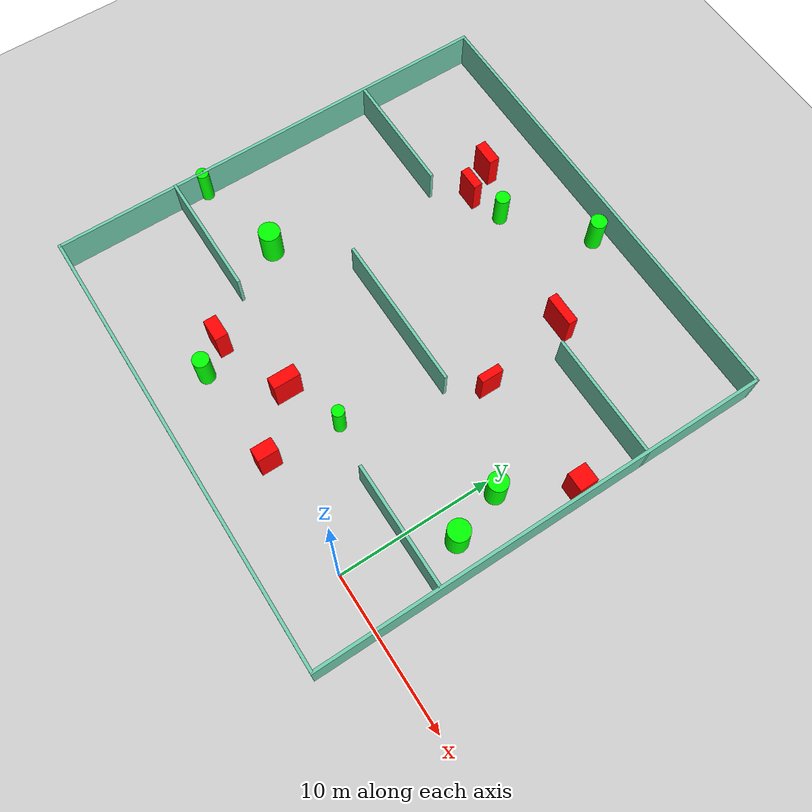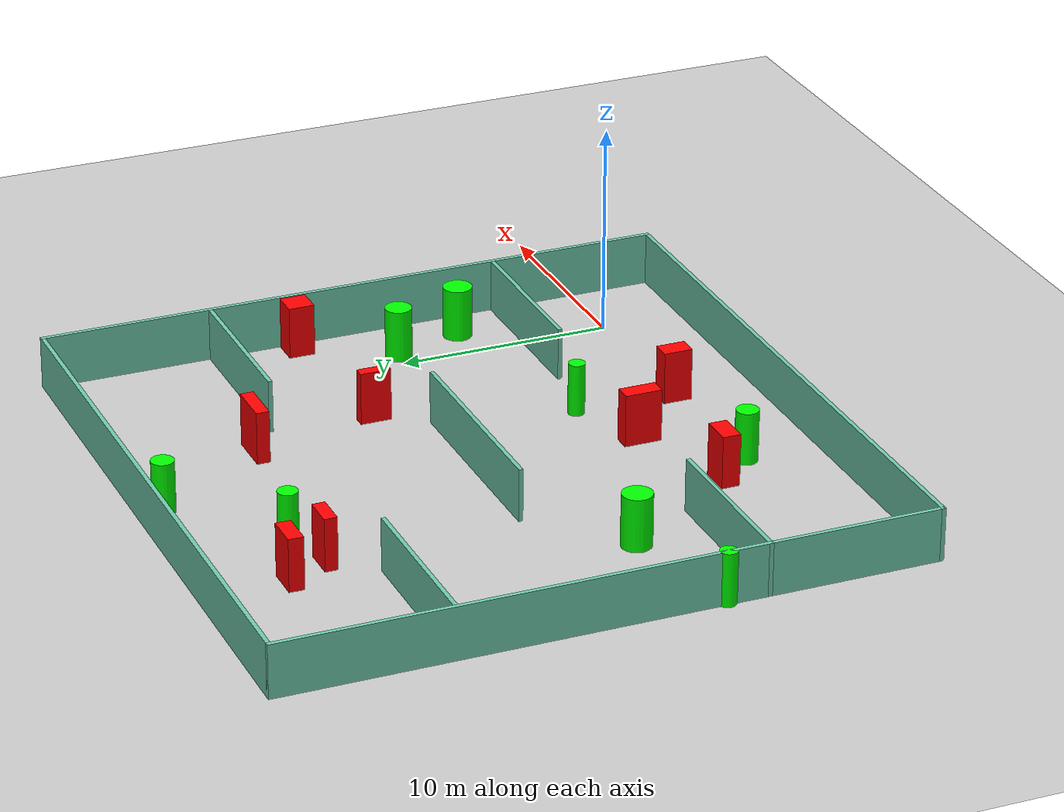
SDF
<sdf version="1.7">
 <world name="default">
  <light name="sun" type="directional">
   <pose>0 0 10 0 -0 0</pose>
   <diffuse>0.8 0.8 0.8 1</diffuse>
   <specular>0.2 0.2 0.2 1</specular>
   <attenuation>
    <range>1000</range>
    <constant>0.9</constant>
    <linear>0.01</linear>
    <quadratic>0.001</quadratic>
   </attenuation>
   <direction>-0.5 0.1 -0.9</direction>
   <spot><inner_angle>0</inner_angle><outer_angle>0</outer_angle><falloff>0</falloff></spot>
  </light>
  <model name="ground_plane">
   <static>1</static>
   <link name="link">
    <collision name="collision">
     <geometry><plane><normal>0 0 1</normal><size>100 100</size></plane></geometry>
     <surface>
      <contact><collide_bitmask>65535</collide_bitmask></contact>
      <friction><ode><mu>100</mu><mu2>50</mu2></ode></friction>
     </surface>
    </collision>
    <visual name="visual">
     <cast_shadows>0</cast_shadows>
     <geometry><plane><normal>0 0 1</normal><size>100 100</size></plane></geometry>
     <material>
      <script><uri>file://media/materials/scripts/gazebo.material</uri><name>Gazebo/Grey</name></script>
     </material>
    </visual>
   </link>
  </model>
  <gravity>0 0 -9.8</gravity>
  <magnetic_field>6e-06 2.3e-05 -4.2e-05</magnetic_field>
  <atmosphere type="adiabatic"/>
  <physics type="ode">
   <max_step_size>0.001</max_step_size>
   <real_time_factor>1</real_time_factor>
   <real_time_update_rate>1000</real_time_update_rate>
  </physics>
  <scene><ambient>0.4 0.4 0.4 1</ambient><background>0.7 0.7 0.7 1</background><shadows>1</shadows></scene>
  <spherical_coordinates>
   <surface_model>EARTH_WGS84</surface_model>
   <latitude_deg>0</latitude_deg>
   <longitude_deg>0</longitude_deg>
   <elevation>0</elevation>
   <heading_deg>0</heading_deg>
  </spherical_coordinates>
  <model name="my_base_walls">
   <link name="Wall_10">
    <collision name="Wall_10_Collision">
     <geometry><box><size>8.2 0.2 2.5</size></box></geometry>
     <pose>0 0 1.25 0 -0 0</pose>
    </collision>
    <visual name="Wall_10_Visual">
     <pose>0 0 1.25 0 -0 0</pose>
     <geometry><box><size>8.2 0.2 2.5</size></box></geometry>
     <material>
      <script><uri>file://media/materials/scripts/gazebo.material</uri><name>Gazebo/Grey</name></script>
      <ambient>0.435294 0.796078 0.67451 1</ambient>
     </material>
     <meta><layer>0</layer></meta>
    </visual>
    <pose>-11 -7 0 0 -0 0</pose>
   </link>
   <link name="Wall_12">
    <collision name="Wall_12_Collision">
     <geometry><box><size>8.2 0.2 2.5</size></box></geometry>
     <pose>0 0 1.25 0 -0 0</pose>
    </collision>
    <visual name="Wall_12_Visual">
     <pose>0 0 1.25 0 -0 0</pose>
     <geometry><box><size>8.2 0.2 2.5</size></box></geometry>
     <material>
      <script><uri>file://media/materials/scripts/gazebo.material</uri><name>Gazebo/Grey</name></script>
      <ambient>0.435294 0.796078 0.67451 1</ambient>
     </material>
     <meta><layer>0</layer></meta>
    </visual>
    <pose>-11 7 0 0 -0 0</pose>
   </link>
   <link name="Wall_14">
    <collision name="Wall_14_Collision">
     <geometry><box><size>8.2 0.2 2.5</size></box></geometry>
     <pose>0 0 1.25 0 -0 0</pose>
    </collision>
    <visual name="Wall_14_Visual">
     <pose>0 0 1.25 0 -0 0</pose>
     <geometry><box><size>8.2 0.2 2.5</size></box></geometry>
     <material>
      <script><uri>file://media/materials/scripts/gazebo.material</uri><name>Gazebo/Grey</name></script>
      <ambient>0.435294 0.796078 0.67451 1</ambient>
     </material>
     <meta><layer>0</layer></meta>
    </visual>
    <pose>11 7 0 0 -0 3.14159</pose>
   </link>
   <link name="Wall_16">
    <collision name="Wall_16_Collision">
     <geometry><box><size>10.2 0.2 2.5</size></box></geometry>
     <pose>0 0 1.25 0 -0 0</pose>
    </collision>
    <visual name="Wall_16_Visual">
     <pose>0 0 1.25 0 -0 0</pose>
     <geometry><box><size>10.2 0.2 2.5</size></box></geometry>
     <material>
      <script><uri>file://media/materials/scripts/gazebo.material</uri><name>Gazebo/Grey</name></script>
      <ambient>0.435294 0.796078 0.67451 1</ambient>
     </material>
     <meta><layer>0</layer></meta>
    </visual>
    <pose>0 0 0 0 -0 3.14159</pose>
   </link>
   <link name="Wall_2">
    <collision name="Wall_2_Collision">
     <geometry><box><size>30.2 0.2 2.5</size></box></geometry>
     <pose>0 0 1.25 0 -0 0</pose>
    </collision>
    <visual name="Wall_2_Visual">
     <pose>0 0 1.25 0 -0 0</pose>
     <geometry><box><size>30.2 0.2 2.5</size></box></geometry>
     <material>
      <script><uri>file://media/materials/scripts/gazebo.material</uri><name>Gazebo/Grey</name></script>
      <ambient>0.435294 0.796078 0.67451 1</ambient>
     </material>
     <meta><layer>0</layer></meta>
    </visual>
    <pose>0 -15 0 0 -0 3.14159</pose>
   </link>
   <link name="Wall_3">
    <collision name="Wall_3_Collision">
     <geometry><box><size>30.2 0.2 2.5</size></box></geometry>
     <pose>0 0 1.25 0 -0 0</pose>
    </collision>
    <visual name="Wall_3_Visual">
     <pose>0 0 1.25 0 -0 0</pose>
     <geometry><box><size>30.2 0.2 2.5</size></box></geometry>
     <material>
      <script><uri>file://media/materials/scripts/gazebo.material</uri><name>Gazebo/Grey</name></script>
      <ambient>0.435294 0.796078 0.67451 1</ambient>
     </material>
     <meta><layer>0</layer></meta>
    </visual>
    <pose>-15 0 0 0 -0 1.5708</pose>
   </link>
   <link name="Wall_4">
    <collision name="Wall_4_Collision">
     <geometry><box><size>30.2 0.2 2.5</size></box></geometry>
     <pose>0 0 1.25 0 -0 0</pose>
    </collision>
    <visual name="Wall_4_Visual">
     <pose>0 0 1.25 0 -0 0</pose>
     <geometry><box><size>30.2 0.2 2.5</size></box></geometry>
     <material>
      <script><uri>file://media/materials/scripts/gazebo.material</uri><name>Gazebo/Grey</name></script>
      <ambient>0.435294 0.796078 0.67451 1</ambient>
     </material>
     <meta><layer>0</layer></meta>
    </visual>
    <pose>0 15 0 0 -0 0</pose>
   </link>
   <link name="Wall_6">
    <collision name="Wall_6_Collision">
     <geometry><box><size>30.2 0.2 2.5</size></box></geometry>
     <pose>0 0 1.25 0 -0 0</pose>
    </collision>
    <visual name="Wall_6_Visual">
     <pose>0 0 1.25 0 -0 0</pose>
     <geometry><box><size>30.2 0.2 2.5</size></box></geometry>
     <material>
      <script><uri>file://media/materials/scripts/gazebo.material</uri><name>Gazebo/Grey</name></script>
      <ambient>0.435294 0.796078 0.67451 1</ambient>
     </material>
     <meta><layer>0</layer></meta>
    </visual>
    <pose>15 0 0 0 -0 1.5708</pose>
   </link>
   <link name="Wall_8">
    <collision name="Wall_8_Collision">
     <geometry><box><size>8.2 0.2 2.5</size></box></geometry>
     <pose>0 0 1.25 0 -0 0</pose>
    </collision>
    <visual name="Wall_8_Visual">
     <pose>0 0 1.25 0 -0 0</pose>
     <geometry><box><size>8.2 0.2 2.5</size></box></geometry>
     <material>
      <script><uri>file://media/materials/scripts/gazebo.material</uri><name>Gazebo/Grey</name></script>
      <ambient>0.435294 0.796078 0.67451 1</ambient>
     </material>
     <meta><layer>0</layer></meta>
    </visual>
    <pose>11 -7 0 0 -0 3.14159</pose>
   </link>
   <static>1</static>
   <pose>-11 11 0 0 -0 0</pose>
  </model>
  <model name="cylinder1">
   <static>1</static>
   <link name="link">
    <inertial>
     <mass>1</mass>
     <inertia><ixx>0.5</ixx><ixy>0</ixy><ixz>0</ixz><iyy>0.5</iyy><iyz>0</iyz><izz>1</izz></inertia>
    </inertial>
    <collision name="collision">
     <geometry><cylinder><radius>0.6927514688568843</radius><length>2.5</length></cylinder></geometry>
    </collision>
    <visual name="visual">
     <geometry><cylinder><radius>0.6927514688568843</radius><length>2.5</length></cylinder></geometry>
     <material>
      <ambient>0 1 0 1</ambient>
      <diffuse>0 1 0 1</diffuse>
      <specular>0.1 0.1 0.1 1</specular>
      <emissive>0 0 0 0</emissive>
     </material>
    </visual>
   </link>
   <pose>1.9653850098337244 6.56554445667042 1.25 0 0 0</pose>
  </model>
  <model name="cylinder2">
   <static>1</static>
   <link name="link">
    <inertial>
     <mass>1</mass>
     <inertia><ixx>0.5</ixx><ixy>0</ixy><ixz>0</ixz><iyy>0.5</iyy><iyz>0</iyz><izz>1</izz></inertia>
    </inertial>
    <collision name="collision">
     <geometry><cylinder><radius>0.4660482813415701</radius><length>2.5</length></cylinder></geometry>
    </collision>
    <visual name="visual">
     <geometry><cylinder><radius>0.4660482813415701</radius><length>2.5</length></cylinder></geometry>
     <material>
      <ambient>0 1 0 1</ambient>
      <diffuse>0 1 0 1</diffuse>
      <specular>0.1 0.1 0.1 1</specular>
      <emissive>0 0 0 0</emissive>
     </material>
    </visual>
   </link>
   <pose>-14.123254501716094 20.85289957475486 1.25 0 0 0</pose>
  </model>
  <model name="cylinder3">
   <static>1</static>
   <link name="link">
    <inertial>
     <mass>1</mass>
     <inertia><ixx>0.5</ixx><ixy>0</ixy><ixz>0</ixz><iyy>0.5</iyy><iyz>0</iyz><izz>1</izz></inertia>
    </inertial>
    <collision name="collision">
     <geometry><cylinder><radius>0.6980631607528351</radius><length>2.5</length></cylinder></geometry>
    </collision>
    <visual name="visual">
     <geometry><cylinder><radius>0.6980631607528351</radius><length>2.5</length></cylinder></geometry>
     <material>
      <ambient>0 1 0 1</ambient>
      <diffuse>0 1 0 1</diffuse>
      <specular>0.1 0.1 0.1 1</specular>
      <emissive>0 0 0 0</emissive>
     </material>
    </visual>
   </link>
   <pose>-19.93487373221835 7.294307505970423 1.25 0 0 0</pose>
  </model>
  <model name="cylinder4">
   <static>1</static>
   <link name="link">
    <inertial>
     <mass>1</mass>
     <inertia><ixx>0.5</ixx><ixy>0</ixy><ixz>0</ixz><iyy>0.5</iyy><iyz>0</iyz><izz>1</izz></inertia>
    </inertial>
    <collision name="collision">
     <geometry><cylinder><radius>0.6292688300874015</radius><length>2.5</length></cylinder></geometry>
    </collision>
    <visual name="visual">
     <geometry><cylinder><radius>0.6292688300874015</radius><length>2.5</length></cylinder></geometry>
     <material>
      <ambient>0 1 0 1</ambient>
      <diffuse>0 1 0 1</diffuse>
      <specular>0.1 0.1 0.1 1</specular>
      <emissive>0 0 0 0</emissive>
     </material>
    </visual>
   </link>
   <pose>0.8792421236090213 9.941255133187177 1.25 0 0 0</pose>
  </model>
  <model name="cylinder5">
   <static>1</static>
   <link name="link">
    <inertial>
     <mass>1</mass>
     <inertia><ixx>0.5</ixx><ixy>0</ixy><ixz>0</ixz><iyy>0.5</iyy><iyz>0</iyz><izz>1</izz></inertia>
    </inertial>
    <collision name="collision">
     <geometry><cylinder><radius>0.5287823712644968</radius><length>2.5</length></cylinder></geometry>
    </collision>
    <visual name="visual">
     <geometry><cylinder><radius>0.5287823712644968</radius><length>2.5</length></cylinder></geometry>
     <material>
      <ambient>0 1 0 1</ambient>
      <diffuse>0 1 0 1</diffuse>
      <specular>0.1 0.1 0.1 1</specular>
      <emissive>0 0 0 0</emissive>
     </material>
    </visual>
   </link>
   <pose>-14.614830732504272 -0.3909843352355007 1.25 0 0 0</pose>
  </model>
  <model name="cylinder6">
   <static>1</static>
   <link name="link">
    <inertial>
     <mass>1</mass>
     <inertia><ixx>0.5</ixx><ixy>0</ixy><ixz>0</ixz><iyy>0.5</iyy><iyz>0</iyz><izz>1</izz></inertia>
    </inertial>
    <collision name="collision">
     <geometry><cylinder><radius>0.3891086512959112</radius><length>2.5</length></cylinder></geometry>
    </collision>
    <visual name="visual">
     <geometry><cylinder><radius>0.3891086512959112</radius><length>2.5</length></cylinder></geometry>
     <material>
      <ambient>0 1 0 1</ambient>
      <diffuse>0 1 0 1</diffuse>
      <specular>0.1 0.1 0.1 1</specular>
      <emissive>0 0 0 0</emissive>
     </material>
    </visual>
   </link>
   <pose>-7.5303345877909 4.6723753246969295 1.25 0 0 0</pose>
  </model>
  <model name="cylinder7">
   <static>1</static>
   <link name="link">
    <inertial>
     <mass>1</mass>
     <inertia><ixx>0.5</ixx><ixy>0</ixy><ixz>0</ixz><iyy>0.5</iyy><iyz>0</iyz><izz>1</izz></inertia>
    </inertial>
    <collision name="collision">
     <geometry><cylinder><radius>0.5243806914797666</radius><length>2.5</length></cylinder></geometry>
    </collision>
    <visual name="visual">
     <geometry><cylinder><radius>0.5243806914797666</radius><length>2.5</length></cylinder></geometry>
     <material>
      <ambient>0 1 0 1</ambient>
      <diffuse>0 1 0 1</diffuse>
      <specular>0.1 0.1 0.1 1</specular>
      <emissive>0 0 0 0</emissive>
     </material>
    </visual>
   </link>
   <pose>-9.461628331528392 24.84053818292788 1.25 0 0 0</pose>
  </model>
  <model name="cylinder8">
   <static>1</static>
   <link name="link">
    <inertial>
     <mass>1</mass>
     <inertia><ixx>0.5</ixx><ixy>0</ixy><ixz>0</ixz><iyy>0.5</iyy><iyz>0</iyz><izz>1</izz></inertia>
    </inertial>
    <collision name="collision">
     <geometry><cylinder><radius>0.397469959020722</radius><length>2.5</length></cylinder></geometry>
    </collision>
    <visual name="visual">
     <geometry><cylinder><radius>0.397469959020722</radius><length>2.5</length></cylinder></geometry>
     <material>
      <ambient>0 1 0 1</ambient>
      <diffuse>0 1 0 1</diffuse>
      <specular>0.1 0.1 0.1 1</specular>
      <emissive>0 0 0 0</emissive>
     </material>
    </visual>
   </link>
   <pose>-25.946632880446707 5.875945448300925 1.25 0 0 0</pose>
  </model>
  <model name="box1">
   <static>1</static>
   <link name="link">
    <inertial>
     <mass>1</mass>
     <inertia><ixx>0.083</ixx><ixy>0</ixy><ixz>0</ixz><iyy>0.083</iyy><iyz>0</iyz><izz>0.083</izz></inertia>
    </inertial>
    <collision name="collision">
     <geometry><box><size>0.8993914706653531 1.3536806962157566 2.5</size></box></geometry>
    </collision>
    <visual name="visual">
     <geometry><box><size>0.8993914706653531 1.3536806962157566 2.5</size></box></geometry>
     <material>
      <ambient>1 0 0 1</ambient>
      <diffuse>1 0 0 1</diffuse>
      <specular>0.1 0.1 0.1 1</specular>
      <emissive>0 0 0 0</emissive>
     </material>
    </visual>
    <sensor name="my_contact" type="contact">
     <contact><collision>box_collision</collision><topic>__default_topic__</topic></contact>
    </sensor>
   </link>
   <pose>-7.792864387420336 -0.017533341183224582 1.25 0 0 0</pose>
  </model>
  <model name="box2">
   <static>1</static>
   <link name="link">
    <inertial>
     <mass>1</mass>
     <inertia><ixx>0.083</ixx><ixy>0</ixy><ixz>0</ixz><iyy>0.083</iyy><iyz>0</iyz><izz>0.083</izz></inertia>
    </inertial>
    <collision name="collision">
     <geometry><box><size>0.8060054162797062 1.7572673084643136 2.5</size></box></geometry>
    </collision>
    <visual name="visual">
     <geometry><box><size>0.8060054162797062 1.7572673084643136 2.5</size></box></geometry>
     <material>
      <ambient>1 0 0 1</ambient>
      <diffuse>1 0 0 1</diffuse>
      <specular>0.1 0.1 0.1 1</specular>
      <emissive>0 0 0 0</emissive>
     </material>
    </visual>
    <sensor name="my_contact" type="contact">
     <contact><collision>box_collision</collision><topic>__default_topic__</topic></contact>
    </sensor>
   </link>
   <pose>-11.053119666879532 3.141022400535485 1.25 0 0 0</pose>
  </model>
  <model name="box3">
   <static>1</static>
   <link name="link">
    <inertial>
     <mass>1</mass>
     <inertia><ixx>0.083</ixx><ixy>0</ixy><ixz>0</ixz><iyy>0.083</iyy><iyz>0</iyz><izz>0.083</izz></inertia>
    </inertial>
    <collision name="collision">
     <geometry><box><size>1.2197383670579889 1.2294617222315551 2.5</size></box></geometry>
    </collision>
    <visual name="visual">
     <geometry><box><size>1.2197383670579889 1.2294617222315551 2.5</size></box></geometry>
     <material>
      <ambient>1 0 0 1</ambient>
      <diffuse>1 0 0 1</diffuse>
      <specular>0.1 0.1 0.1 1</specular>
      <emissive>0 0 0 0</emissive>
     </material>
    </visual>
    <sensor name="my_contact" type="contact">
     <contact><collision>box_collision</collision><topic>__default_topic__</topic></contact>
    </sensor>
   </link>
   <pose>3.2003817178373453 14.04751965641396 1.25 0 0 0</pose>
  </model>
  <model name="box4">
   <static>1</static>
   <link name="link">
    <inertial>
     <mass>1</mass>
     <inertia><ixx>0.083</ixx><ixy>0</ixy><ixz>0</ixz><iyy>0.083</iyy><iyz>0</iyz><izz>0.083</izz></inertia>
    </inertial>
    <collision name="collision">
     <geometry><box><size>2.096619109739465 0.6151186310568412 2.5</size></box></geometry>
    </collision>
    <visual name="visual">
     <geometry><box><size>2.096619109739465 0.6151186310568412 2.5</size></box></geometry>
     <material>
      <ambient>1 0 0 1</ambient>
      <diffuse>1 0 0 1</diffuse>
      <specular>0.1 0.1 0.1 1</specular>
      <emissive>0 0 0 0</emissive>
     </material>
    </visual>
    <sensor name="my_contact" type="contact">
     <contact><collision>box_collision</collision><topic>__default_topic__</topic></contact>
    </sensor>
   </link>
   <pose>-5.7984517676195395 19.340693146717893 1.25 0 0 0</pose>
  </model>
  <model name="box5">
   <static>1</static>
   <link name="link">
    <inertial>
     <mass>1</mass>
     <inertia><ixx>0.083</ixx><ixy>0</ixy><ixz>0</ixz><iyy>0.083</iyy><iyz>0</iyz><izz>0.083</izz></inertia>
    </inertial>
    <collision name="collision">
     <geometry><box><size>1.488109124061069 0.8519953940311337 2.5</size></box></geometry>
    </collision>
    <visual name="visual">
     <geometry><box><size>1.488109124061069 0.8519953940311337 2.5</size></box></geometry>
     <material>
      <ambient>1 0 0 1</ambient>
      <diffuse>1 0 0 1</diffuse>
      <specular>0.1 0.1 0.1 1</specular>
      <emissive>0 0 0 0</emissive>
     </material>
    </visual>
    <sensor name="my_contact" type="contact">
     <contact><collision>box_collision</collision><topic>__default_topic__</topic></contact>
    </sensor>
   </link>
   <pose>-15.945129590464738 1.3389247175656127 1.25 0 0 0</pose>
  </model>
  <model name="box6">
   <static>1</static>
   <link name="link">
    <inertial>
     <mass>1</mass>
     <inertia><ixx>0.083</ixx><ixy>0</ixy><ixz>0</ixz><iyy>0.083</iyy><iyz>0</iyz><izz>0.083</izz></inertia>
    </inertial>
    <collision name="collision">
     <geometry><box><size>1.5778409852415451 0.7055867130497753 2.5</size></box></geometry>
    </collision>
    <visual name="visual">
     <geometry><box><size>1.5778409852415451 0.7055867130497753 2.5</size></box></geometry>
     <material>
      <ambient>1 0 0 1</ambient>
      <diffuse>1 0 0 1</diffuse>
      <specular>0.1 0.1 0.1 1</specular>
      <emissive>0 0 0 0</emissive>
     </material>
    </visual>
    <sensor name="my_contact" type="contact">
     <contact><collision>box_collision</collision><topic>__default_topic__</topic></contact>
    </sensor>
   </link>
   <pose>-17.43827368889251 21.984993169328064 1.25 0 0 0</pose>
  </model>
  <model name="box7">
   <static>1</static>
   <link name="link">
    <inertial>
     <mass>1</mass>
     <inertia><ixx>0.083</ixx><ixy>0</ixy><ixz>0</ixz><iyy>0.083</iyy><iyz>0</iyz><izz>0.083</izz></inertia>
    </inertial>
    <collision name="collision">
     <geometry><box><size>1.4881740104516372 0.5968473286771397 2.5</size></box></geometry>
    </collision>
    <visual name="visual">
     <geometry><box><size>1.4881740104516372 0.5968473286771397 2.5</size></box></geometry>
     <material>
      <ambient>1 0 0 1</ambient>
      <diffuse>1 0 0 1</diffuse>
      <specular>0.1 0.1 0.1 1</specular>
      <emissive>0 0 0 0</emissive>
     </material>
    </visual>
    <sensor name="my_contact" type="contact">
     <contact><collision>box_collision</collision><topic>__default_topic__</topic></contact>
    </sensor>
   </link>
   <pose>-16.401979695664682 20.042858548815296 1.25 0 0 0</pose>
  </model>
  <model name="box8">
   <static>1</static>
   <link name="link">
    <inertial>
     <mass>1</mass>
     <inertia><ixx>0.083</ixx><ixy>0</ixy><ixz>0</ixz><iyy>0.083</iyy><iyz>0</iyz><izz>0.083</izz></inertia>
    </inertial>
    <collision name="collision">
     <geometry><box><size>0.5153712122558826 1.4536561215628498 2.5</size></box></geometry>
    </collision>
    <visual name="visual">
     <geometry><box><size>0.5153712122558826 1.4536561215628498 2.5</size></box></geometry>
     <material>
      <ambient>1 0 0 1</ambient>
      <diffuse>1 0 0 1</diffuse>
      <specular>0.1 0.1 0.1 1</specular>
      <emissive>0 0 0 0</emissive>
     </material>
    </visual>
    <sensor name="my_contact" type="contact">
     <contact><collision>box_collision</collision><topic>__default_topic__</topic></contact>
    </sensor>
   </link>
   <pose>-4.71538468434467 13.319716628569267 1.25 0 0 0</pose>
  </model>
 </world>
</sdf>
